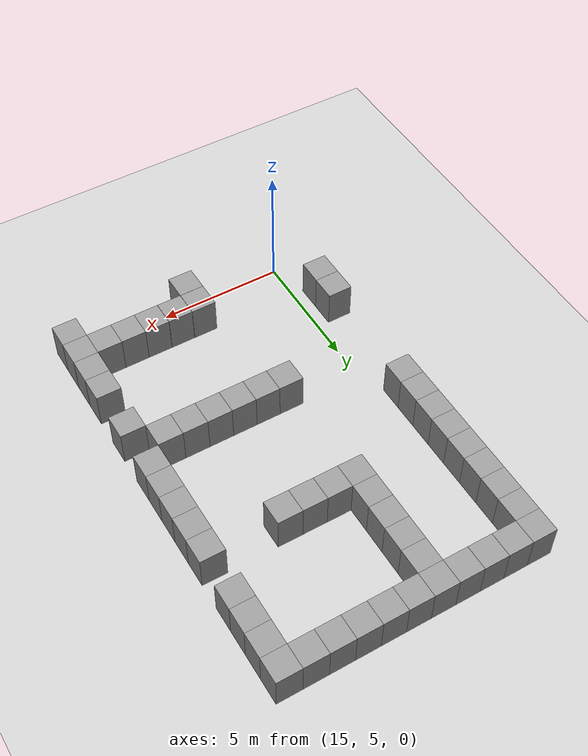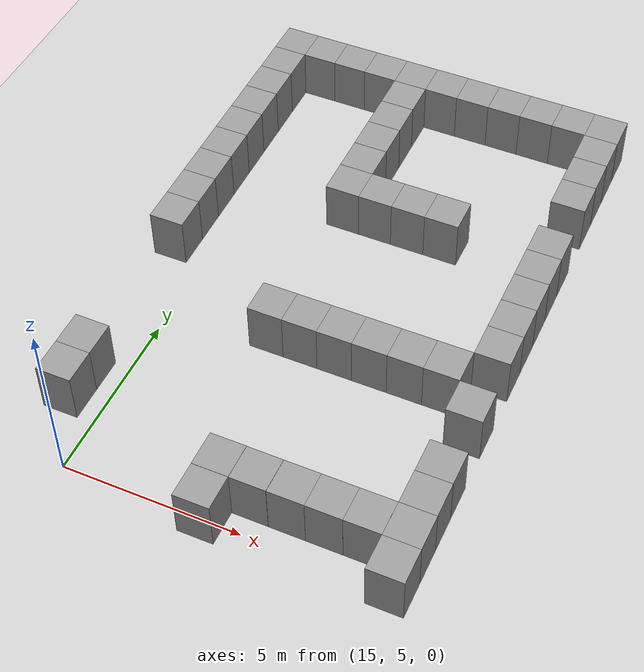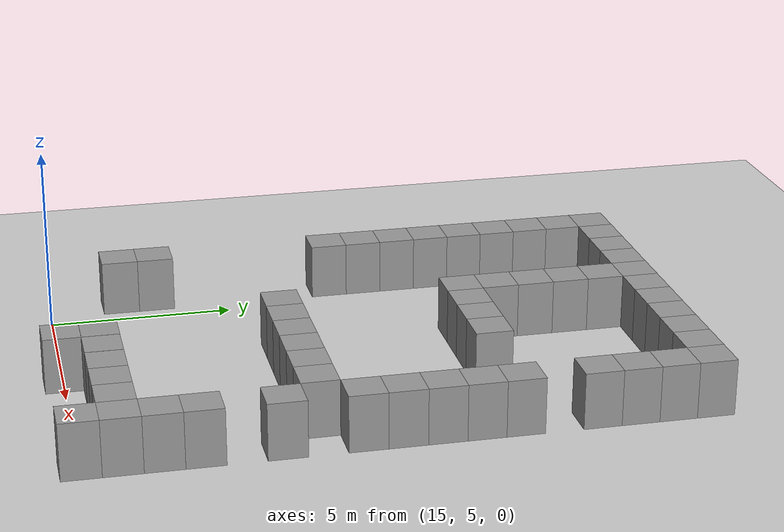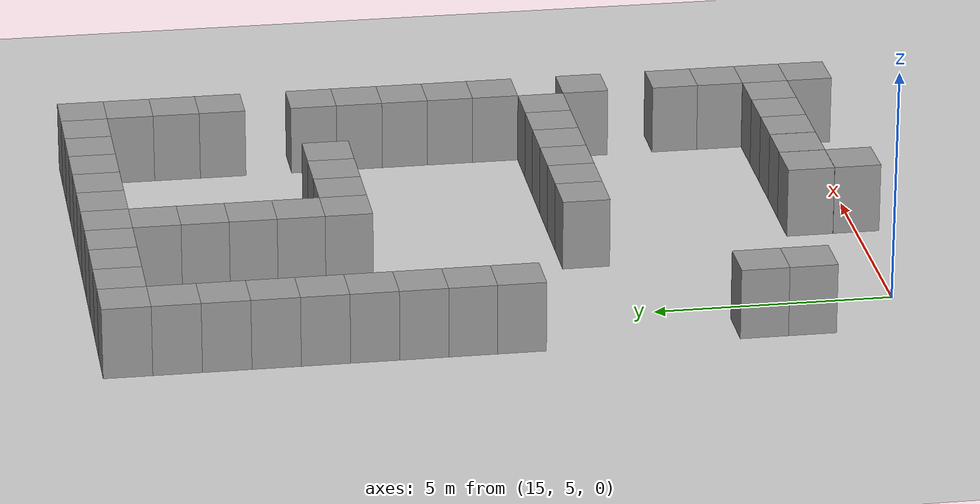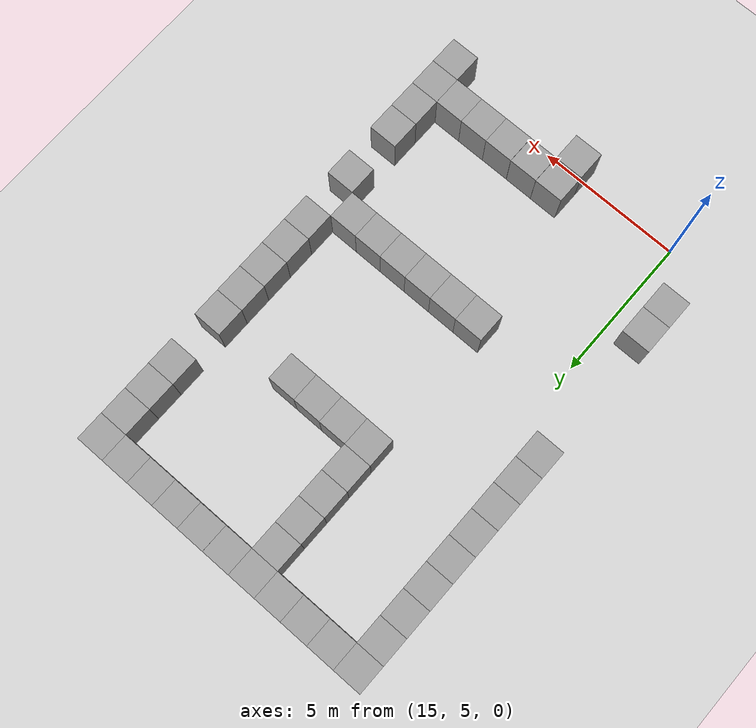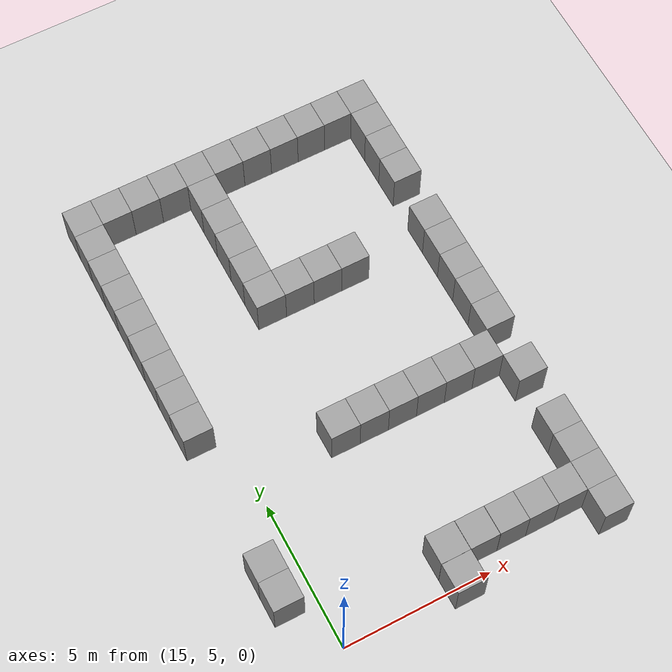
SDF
<sdf version="1.4">
 <world name="default">
  <model name="ground_plane">
   <static>1</static>
   <link name="link">
    <collision name="collision">
     <geometry><plane><normal>0 0 1</normal><size>100 100</size></plane></geometry>
     <surface><friction><ode><mu>100</mu><mu2>50</mu2></ode></friction></surface>
    </collision>
    <visual name="visual">
     <cast_shadows>0</cast_shadows>
     <geometry><plane><normal>0 0 1</normal><size>100 100</size></plane></geometry>
     <material>
      <script><uri>file://media/materials/scripts/gazebo.material</uri><name>Gazebo/Grey</name></script>
     </material>
    </visual>
    <velocity_decay><linear>0</linear><angular>0</angular></velocity_decay>
   </link>
  </model>
  <model name="unit_box_121">
   <pose>14 21 0.5 0 0 -2e-06</pose>
   <static>1</static>
   <link name="link">
    <inertial>
     <mass>1</mass>
     <inertia><ixx>1</ixx><ixy>0</ixy><ixz>0</ixz><iyy>1</iyy><iyz>0</iyz><izz>1</izz></inertia>
    </inertial>
    <collision name="collision"><geometry><box><size>1 1 2</size></box></geometry></collision>
    <visual name="visual">
     <geometry><box><size>1 1 2</size></box></geometry>
     <material>
      <script><uri>file://media/materials/scripts/gazebo.material</uri><name>Gazebo/Grey</name></script>
     </material>
    </visual>
    <velocity_decay><linear>0</linear><angular>0</angular></velocity_decay>
   </link>
   <static>0</static>
  </model>
  <model name="unit_box_122">
   <pose>14 20 0.5 0 0 -4e-06</pose>
   <static>1</static>
   <link name="link">
    <inertial>
     <mass>1</mass>
     <inertia><ixx>1</ixx><ixy>0</ixy><ixz>0</ixz><iyy>1</iyy><iyz>0</iyz><izz>1</izz></inertia>
    </inertial>
    <collision name="collision"><geometry><box><size>1 1 2</size></box></geometry></collision>
    <visual name="visual">
     <geometry><box><size>1 1 2</size></box></geometry>
     <material>
      <script><uri>file://media/materials/scripts/gazebo.material</uri><name>Gazebo/Grey</name></script>
     </material>
    </visual>
    <velocity_decay><linear>0</linear><angular>0</angular></velocity_decay>
   </link>
   <static>0</static>
  </model>
  <model name="unit_box_123">
   <pose>14 19 0.5 0 0 -4e-06</pose>
   <static>1</static>
   <link name="link">
    <inertial>
     <mass>1</mass>
     <inertia><ixx>1</ixx><ixy>0</ixy><ixz>0</ixz><iyy>1</iyy><iyz>0</iyz><izz>1</izz></inertia>
    </inertial>
    <collision name="collision"><geometry><box><size>1 1 2</size></box></geometry></collision>
    <visual name="visual">
     <geometry><box><size>1 1 2</size></box></geometry>
     <material>
      <script><uri>file://media/materials/scripts/gazebo.material</uri><name>Gazebo/Grey</name></script>
     </material>
    </visual>
    <velocity_decay><linear>0</linear><angular>0</angular></velocity_decay>
   </link>
   <static>0</static>
  </model>
  <model name="unit_box_124">
   <pose>14 18 0.5 0 0 -4e-06</pose>
   <static>1</static>
   <link name="link">
    <inertial>
     <mass>1</mass>
     <inertia><ixx>1</ixx><ixy>0</ixy><ixz>0</ixz><iyy>1</iyy><iyz>0</iyz><izz>1</izz></inertia>
    </inertial>
    <collision name="collision"><geometry><box><size>1 1 2</size></box></geometry></collision>
    <visual name="visual">
     <geometry><box><size>1 1 2</size></box></geometry>
     <material>
      <script><uri>file://media/materials/scripts/gazebo.material</uri><name>Gazebo/Grey</name></script>
     </material>
    </visual>
    <velocity_decay><linear>0</linear><angular>0</angular></velocity_decay>
   </link>
   <static>0</static>
  </model>
  <model name="unit_box_125">
   <pose>14 17 0.5 0 -0 1e-06</pose>
   <static>1</static>
   <link name="link">
    <inertial>
     <mass>1</mass>
     <inertia><ixx>1</ixx><ixy>0</ixy><ixz>0</ixz><iyy>1</iyy><iyz>0</iyz><izz>1</izz></inertia>
    </inertial>
    <collision name="collision"><geometry><box><size>1 1 2</size></box></geometry></collision>
    <visual name="visual">
     <geometry><box><size>1 1 2</size></box></geometry>
     <material>
      <script><uri>file://media/materials/scripts/gazebo.material</uri><name>Gazebo/Grey</name></script>
     </material>
    </visual>
    <velocity_decay><linear>0</linear><angular>0</angular></velocity_decay>
   </link>
   <static>0</static>
  </model>
  <model name="unit_box_130">
   <pose>14 16 0.5 0 -0 2e-06</pose>
   <static>1</static>
   <link name="link">
    <inertial>
     <mass>1</mass>
     <inertia><ixx>1</ixx><ixy>0</ixy><ixz>0</ixz><iyy>1</iyy><iyz>0</iyz><izz>1</izz></inertia>
    </inertial>
    <collision name="collision"><geometry><box><size>1 1 2</size></box></geometry></collision>
    <visual name="visual">
     <geometry><box><size>1 1 2</size></box></geometry>
     <material>
      <script><uri>file://media/materials/scripts/gazebo.material</uri><name>Gazebo/Grey</name></script>
     </material>
    </visual>
    <velocity_decay><linear>0</linear><angular>0</angular></velocity_decay>
   </link>
   <static>0</static>
  </model>
  <model name="unit_box_131">
   <pose>14 15 0.5 0 -0 1e-06</pose>
   <static>1</static>
   <link name="link">
    <inertial>
     <mass>1</mass>
     <inertia><ixx>1</ixx><ixy>0</ixy><ixz>0</ixz><iyy>1</iyy><iyz>0</iyz><izz>1</izz></inertia>
    </inertial>
    <collision name="collision"><geometry><box><size>1 1 2</size></box></geometry></collision>
    <visual name="visual">
     <geometry><box><size>1 1 2</size></box></geometry>
     <material>
      <script><uri>file://media/materials/scripts/gazebo.material</uri><name>Gazebo/Grey</name></script>
     </material>
    </visual>
    <velocity_decay><linear>0</linear><angular>0</angular></velocity_decay>
   </link>
   <static>0</static>
  </model>
  <model name="unit_box_132">
   <pose>14 14 0.5 0 -0 1e-06</pose>
   <static>1</static>
   <link name="link">
    <inertial>
     <mass>1</mass>
     <inertia><ixx>1</ixx><ixy>0</ixy><ixz>0</ixz><iyy>1</iyy><iyz>0</iyz><izz>1</izz></inertia>
    </inertial>
    <collision name="collision"><geometry><box><size>1 1 2</size></box></geometry></collision>
    <visual name="visual">
     <geometry><box><size>1 1 2</size></box></geometry>
     <material>
      <script><uri>file://media/materials/scripts/gazebo.material</uri><name>Gazebo/Grey</name></script>
     </material>
    </visual>
    <velocity_decay><linear>0</linear><angular>0</angular></velocity_decay>
   </link>
   <static>0</static>
  </model>
  <model name="unit_box_133">
   <pose>14 13 0.5 0 -0 1e-06</pose>
   <static>1</static>
   <link name="link">
    <inertial>
     <mass>1</mass>
     <inertia><ixx>1</ixx><ixy>0</ixy><ixz>0</ixz><iyy>1</iyy><iyz>0</iyz><izz>1</izz></inertia>
    </inertial>
    <collision name="collision"><geometry><box><size>1 1 2</size></box></geometry></collision>
    <visual name="visual">
     <geometry><box><size>1 1 2</size></box></geometry>
     <material>
      <script><uri>file://media/materials/scripts/gazebo.material</uri><name>Gazebo/Grey</name></script>
     </material>
    </visual>
    <velocity_decay><linear>0</linear><angular>0</angular></velocity_decay>
   </link>
   <static>0</static>
  </model>
  <model name="unit_box_134">
   <pose>15 21 0.5 0 -0 1e-06</pose>
   <static>1</static>
   <link name="link">
    <inertial>
     <mass>1</mass>
     <inertia><ixx>1</ixx><ixy>0</ixy><ixz>0</ixz><iyy>1</iyy><iyz>0</iyz><izz>1</izz></inertia>
    </inertial>
    <collision name="collision"><geometry><box><size>1 1 2</size></box></geometry></collision>
    <visual name="visual">
     <geometry><box><size>1 1 2</size></box></geometry>
     <material>
      <script><uri>file://media/materials/scripts/gazebo.material</uri><name>Gazebo/Grey</name></script>
     </material>
    </visual>
    <velocity_decay><linear>0</linear><angular>0</angular></velocity_decay>
   </link>
   <static>0</static>
  </model>
  <model name="unit_box_135">
   <pose>16 21 0.5 0 -0 1e-06</pose>
   <static>1</static>
   <link name="link">
    <inertial>
     <mass>1</mass>
     <inertia><ixx>1</ixx><ixy>0</ixy><ixz>0</ixz><iyy>1</iyy><iyz>0</iyz><izz>1</izz></inertia>
    </inertial>
    <collision name="collision"><geometry><box><size>1 1 2</size></box></geometry></collision>
    <visual name="visual">
     <geometry><box><size>1 1 2</size></box></geometry>
     <material>
      <script><uri>file://media/materials/scripts/gazebo.material</uri><name>Gazebo/Grey</name></script>
     </material>
    </visual>
    <velocity_decay><linear>0</linear><angular>0</angular></velocity_decay>
   </link>
   <static>0</static>
  </model>
  <model name="unit_box_136">
   <pose>17 21 0.5 0 -0 3e-06</pose>
   <static>1</static>
   <link name="link">
    <inertial>
     <mass>1</mass>
     <inertia><ixx>1</ixx><ixy>0</ixy><ixz>0</ixz><iyy>1</iyy><iyz>0</iyz><izz>1</izz></inertia>
    </inertial>
    <collision name="collision"><geometry><box><size>1 1 2</size></box></geometry></collision>
    <visual name="visual">
     <geometry><box><size>1 1 2</size></box></geometry>
     <material>
      <script><uri>file://media/materials/scripts/gazebo.material</uri><name>Gazebo/Grey</name></script>
     </material>
    </visual>
    <velocity_decay><linear>0</linear><angular>0</angular></velocity_decay>
   </link>
   <static>0</static>
  </model>
  <model name="unit_box_137">
   <pose>18 21 0.5 0 -0 3e-06</pose>
   <static>1</static>
   <link name="link">
    <inertial>
     <mass>1</mass>
     <inertia><ixx>1</ixx><ixy>0</ixy><ixz>0</ixz><iyy>1</iyy><iyz>0</iyz><izz>1</izz></inertia>
    </inertial>
    <collision name="collision"><geometry><box><size>1 1 2</size></box></geometry></collision>
    <visual name="visual">
     <geometry><box><size>1 1 2</size></box></geometry>
     <material>
      <script><uri>file://media/materials/scripts/gazebo.material</uri><name>Gazebo/Grey</name></script>
     </material>
    </visual>
    <velocity_decay><linear>0</linear><angular>0</angular></velocity_decay>
   </link>
   <static>0</static>
  </model>
  <model name="unit_box_138">
   <pose>18 20 0.5 0 -0 5e-06</pose>
   <static>1</static>
   <link name="link">
    <inertial>
     <mass>1</mass>
     <inertia><ixx>1</ixx><ixy>0</ixy><ixz>0</ixz><iyy>1</iyy><iyz>0</iyz><izz>1</izz></inertia>
    </inertial>
    <collision name="collision"><geometry><box><size>1 1 2</size></box></geometry></collision>
    <visual name="visual">
     <geometry><box><size>1 1 2</size></box></geometry>
     <material>
      <script><uri>file://media/materials/scripts/gazebo.material</uri><name>Gazebo/Grey</name></script>
     </material>
    </visual>
    <velocity_decay><linear>0</linear><angular>0</angular></velocity_decay>
   </link>
   <static>0</static>
  </model>
  <model name="unit_box_139">
   <pose>18 19 0.5 0 -0 3e-06</pose>
   <static>1</static>
   <link name="link">
    <inertial>
     <mass>1</mass>
     <inertia><ixx>1</ixx><ixy>0</ixy><ixz>0</ixz><iyy>1</iyy><iyz>0</iyz><izz>1</izz></inertia>
    </inertial>
    <collision name="collision"><geometry><box><size>1 1 2</size></box></geometry></collision>
    <visual name="visual">
     <geometry><box><size>1 1 2</size></box></geometry>
     <material>
      <script><uri>file://media/materials/scripts/gazebo.material</uri><name>Gazebo/Grey</name></script>
     </material>
    </visual>
    <velocity_decay><linear>0</linear><angular>0</angular></velocity_decay>
   </link>
   <static>0</static>
  </model>
  <model name="unit_box_140">
   <pose>18 18 0.5 0 -0 2e-06</pose>
   <static>1</static>
   <link name="link">
    <inertial>
     <mass>1</mass>
     <inertia><ixx>1</ixx><ixy>0</ixy><ixz>0</ixz><iyy>1</iyy><iyz>0</iyz><izz>1</izz></inertia>
    </inertial>
    <collision name="collision"><geometry><box><size>1 1 2</size></box></geometry></collision>
    <visual name="visual">
     <geometry><box><size>1 1 2</size></box></geometry>
     <material>
      <script><uri>file://media/materials/scripts/gazebo.material</uri><name>Gazebo/Grey</name></script>
     </material>
    </visual>
    <velocity_decay><linear>0</linear><angular>0</angular></velocity_decay>
   </link>
   <static>0</static>
  </model>
  <model name="unit_box_141">
   <pose>18 17 0.5 0 -0 1e-06</pose>
   <static>1</static>
   <link name="link">
    <inertial>
     <mass>1</mass>
     <inertia><ixx>1</ixx><ixy>0</ixy><ixz>0</ixz><iyy>1</iyy><iyz>0</iyz><izz>1</izz></inertia>
    </inertial>
    <collision name="collision"><geometry><box><size>1 1 2</size></box></geometry></collision>
    <visual name="visual">
     <geometry><box><size>1 1 2</size></box></geometry>
     <material>
      <script><uri>file://media/materials/scripts/gazebo.material</uri><name>Gazebo/Grey</name></script>
     </material>
    </visual>
    <velocity_decay><linear>0</linear><angular>0</angular></velocity_decay>
   </link>
   <static>0</static>
  </model>
  <model name="unit_box_142">
   <pose>18 16 0.5 0 -0 1e-06</pose>
   <static>1</static>
   <link name="link">
    <inertial>
     <mass>1</mass>
     <inertia><ixx>1</ixx><ixy>0</ixy><ixz>0</ixz><iyy>1</iyy><iyz>0</iyz><izz>1</izz></inertia>
    </inertial>
    <collision name="collision"><geometry><box><size>1 1 2</size></box></geometry></collision>
    <visual name="visual">
     <geometry><box><size>1 1 2</size></box></geometry>
     <material>
      <script><uri>file://media/materials/scripts/gazebo.material</uri><name>Gazebo/Grey</name></script>
     </material>
    </visual>
    <velocity_decay><linear>0</linear><angular>0</angular></velocity_decay>
   </link>
   <static>0</static>
  </model>
  <model name="unit_box_143">
   <pose>19 16 0.5 0 -0 1e-06</pose>
   <static>1</static>
   <link name="link">
    <inertial>
     <mass>1</mass>
     <inertia><ixx>1</ixx><ixy>0</ixy><ixz>0</ixz><iyy>1</iyy><iyz>0</iyz><izz>1</izz></inertia>
    </inertial>
    <collision name="collision"><geometry><box><size>1 1 2</size></box></geometry></collision>
    <visual name="visual">
     <geometry><box><size>1 1 2</size></box></geometry>
     <material>
      <script><uri>file://media/materials/scripts/gazebo.material</uri><name>Gazebo/Grey</name></script>
     </material>
    </visual>
    <velocity_decay><linear>0</linear><angular>0</angular></velocity_decay>
   </link>
   <static>0</static>
  </model>
  <model name="unit_box_144">
   <pose>20 16 0.5 0 0 -1e-06</pose>
   <static>1</static>
   <link name="link">
    <inertial>
     <mass>1</mass>
     <inertia><ixx>1</ixx><ixy>0</ixy><ixz>0</ixz><iyy>1</iyy><iyz>0</iyz><izz>1</izz></inertia>
    </inertial>
    <collision name="collision"><geometry><box><size>1 1 2</size></box></geometry></collision>
    <visual name="visual">
     <geometry><box><size>1 1 2</size></box></geometry>
     <material>
      <script><uri>file://media/materials/scripts/gazebo.material</uri><name>Gazebo/Grey</name></script>
     </material>
    </visual>
    <velocity_decay><linear>0</linear><angular>0</angular></velocity_decay>
   </link>
   <static>0</static>
  </model>
  <model name="unit_box_145">
   <pose>21 16 0.5 0 0 -1e-06</pose>
   <static>1</static>
   <link name="link">
    <inertial>
     <mass>1</mass>
     <inertia><ixx>1</ixx><ixy>0</ixy><ixz>0</ixz><iyy>1</iyy><iyz>0</iyz><izz>1</izz></inertia>
    </inertial>
    <collision name="collision"><geometry><box><size>1 1 2</size></box></geometry></collision>
    <visual name="visual">
     <geometry><box><size>1 1 2</size></box></geometry>
     <material>
      <script><uri>file://media/materials/scripts/gazebo.material</uri><name>Gazebo/Grey</name></script>
     </material>
    </visual>
    <velocity_decay><linear>0</linear><angular>0</angular></velocity_decay>
   </link>
   <static>0</static>
  </model>
  <model name="unit_box_146">
   <pose>19 21 0.5 0 -0 3e-06</pose>
   <static>1</static>
   <link name="link">
    <inertial>
     <mass>1</mass>
     <inertia><ixx>1</ixx><ixy>0</ixy><ixz>0</ixz><iyy>1</iyy><iyz>0</iyz><izz>1</izz></inertia>
    </inertial>
    <collision name="collision"><geometry><box><size>1 1 2</size></box></geometry></collision>
    <visual name="visual">
     <geometry><box><size>1 1 2</size></box></geometry>
     <material>
      <script><uri>file://media/materials/scripts/gazebo.material</uri><name>Gazebo/Grey</name></script>
     </material>
    </visual>
    <velocity_decay><linear>0</linear><angular>0</angular></velocity_decay>
   </link>
   <static>0</static>
  </model>
  <model name="unit_box_147">
   <pose>20.0003 21 0.5 0 -0 1.4e-05</pose>
   <static>1</static>
   <link name="link">
    <inertial>
     <mass>1</mass>
     <inertia><ixx>1</ixx><ixy>0</ixy><ixz>0</ixz><iyy>1</iyy><iyz>0</iyz><izz>1</izz></inertia>
    </inertial>
    <collision name="collision"><geometry><box><size>1 1 2</size></box></geometry></collision>
    <visual name="visual">
     <geometry><box><size>1 1 2</size></box></geometry>
     <material>
      <script><uri>file://media/materials/scripts/gazebo.material</uri><name>Gazebo/Grey</name></script>
     </material>
    </visual>
    <velocity_decay><linear>0</linear><angular>0</angular></velocity_decay>
   </link>
   <static>0</static>
  </model>
  <model name="unit_box_148">
   <pose>21.0003 21 0.5 0 -0 3.3e-05</pose>
   <static>1</static>
   <link name="link">
    <inertial>
     <mass>1</mass>
     <inertia><ixx>1</ixx><ixy>0</ixy><ixz>0</ixz><iyy>1</iyy><iyz>0</iyz><izz>1</izz></inertia>
    </inertial>
    <collision name="collision"><geometry><box><size>1 1 2</size></box></geometry></collision>
    <visual name="visual">
     <geometry><box><size>1 1 2</size></box></geometry>
     <material>
      <script><uri>file://media/materials/scripts/gazebo.material</uri><name>Gazebo/Grey</name></script>
     </material>
    </visual>
    <velocity_decay><linear>0</linear><angular>0</angular></velocity_decay>
   </link>
   <static>0</static>
  </model>
  <model name="unit_box_150">
   <pose>22.0003 21.0001 0.5 0 -0 7.3e-05</pose>
   <static>1</static>
   <link name="link">
    <inertial>
     <mass>1</mass>
     <inertia><ixx>1</ixx><ixy>0</ixy><ixz>0</ixz><iyy>1</iyy><iyz>0</iyz><izz>1</izz></inertia>
    </inertial>
    <collision name="collision"><geometry><box><size>1 1 2</size></box></geometry></collision>
    <visual name="visual">
     <geometry><box><size>1 1 2</size></box></geometry>
     <material>
      <script><uri>file://media/materials/scripts/gazebo.material</uri><name>Gazebo/Grey</name></script>
     </material>
    </visual>
    <velocity_decay><linear>0</linear><angular>0</angular></velocity_decay>
   </link>
   <static>0</static>
  </model>
  <model name="unit_box_151">
   <pose>23.0004 21.0004 0.5 0 -0 0.000111</pose>
   <static>1</static>
   <link name="link">
    <inertial>
     <mass>1</mass>
     <inertia><ixx>1</ixx><ixy>0</ixy><ixz>0</ixz><iyy>1</iyy><iyz>0</iyz><izz>1</izz></inertia>
    </inertial>
    <collision name="collision"><geometry><box><size>1 1 2</size></box></geometry></collision>
    <visual name="visual">
     <geometry><box><size>1 1 2</size></box></geometry>
     <material>
      <script><uri>file://media/materials/scripts/gazebo.material</uri><name>Gazebo/Grey</name></script>
     </material>
    </visual>
    <velocity_decay><linear>0</linear><angular>0</angular></velocity_decay>
   </link>
   <static>0</static>
  </model>
  <model name="unit_box_152">
   <pose>24.0004 21.0005 0.5 0 -0 4.7e-05</pose>
   <static>1</static>
   <link name="link">
    <inertial>
     <mass>1</mass>
     <inertia><ixx>1</ixx><ixy>0</ixy><ixz>0</ixz><iyy>1</iyy><iyz>0</iyz><izz>1</izz></inertia>
    </inertial>
    <collision name="collision"><geometry><box><size>1 1 2</size></box></geometry></collision>
    <visual name="visual">
     <geometry><box><size>1 1 2</size></box></geometry>
     <material>
      <script><uri>file://media/materials/scripts/gazebo.material</uri><name>Gazebo/Grey</name></script>
     </material>
    </visual>
    <velocity_decay><linear>0</linear><angular>0</angular></velocity_decay>
   </link>
   <static>0</static>
  </model>
  <model name="unit_box_153">
   <pose>24.0001 20.0005 0.5 0 -0 2.5e-05</pose>
   <static>1</static>
   <link name="link">
    <inertial>
     <mass>1</mass>
     <inertia><ixx>1</ixx><ixy>0</ixy><ixz>0</ixz><iyy>1</iyy><iyz>0</iyz><izz>1</izz></inertia>
    </inertial>
    <collision name="collision"><geometry><box><size>1 1 2</size></box></geometry></collision>
    <visual name="visual">
     <geometry><box><size>1 1 2</size></box></geometry>
     <material>
      <script><uri>file://media/materials/scripts/gazebo.material</uri><name>Gazebo/Grey</name></script>
     </material>
    </visual>
    <velocity_decay><linear>0</linear><angular>0</angular></velocity_decay>
   </link>
   <static>0</static>
  </model>
  <model name="unit_box_154">
   <pose>24.0001 19.0005 0.5 0 -0 1.7e-05</pose>
   <static>1</static>
   <link name="link">
    <inertial>
     <mass>1</mass>
     <inertia><ixx>1</ixx><ixy>0</ixy><ixz>0</ixz><iyy>1</iyy><iyz>0</iyz><izz>1</izz></inertia>
    </inertial>
    <collision name="collision"><geometry><box><size>1 1 2</size></box></geometry></collision>
    <visual name="visual">
     <geometry><box><size>1 1 2</size></box></geometry>
     <material>
      <script><uri>file://media/materials/scripts/gazebo.material</uri><name>Gazebo/Grey</name></script>
     </material>
    </visual>
    <velocity_decay><linear>0</linear><angular>0</angular></velocity_decay>
   </link>
   <static>0</static>
  </model>
  <model name="unit_box_155">
   <pose>24.0001 18.0005 0.5 0 -0 1.3e-05</pose>
   <static>1</static>
   <link name="link">
    <inertial>
     <mass>1</mass>
     <inertia><ixx>1</ixx><ixy>0</ixy><ixz>0</ixz><iyy>1</iyy><iyz>0</iyz><izz>1</izz></inertia>
    </inertial>
    <collision name="collision"><geometry><box><size>1 1 2</size></box></geometry></collision>
    <visual name="visual">
     <geometry><box><size>1 1 2</size></box></geometry>
     <material>
      <script><uri>file://media/materials/scripts/gazebo.material</uri><name>Gazebo/Grey</name></script>
     </material>
    </visual>
    <velocity_decay><linear>0</linear><angular>0</angular></velocity_decay>
   </link>
   <static>0</static>
  </model>
  <model name="unit_box_157">
   <pose>24.0002 16.0005 0.5 0 -0 1.5e-05</pose>
   <static>1</static>
   <link name="link">
    <inertial>
     <mass>1</mass>
     <inertia><ixx>1</ixx><ixy>0</ixy><ixz>0</ixz><iyy>1</iyy><iyz>0</iyz><izz>1</izz></inertia>
    </inertial>
    <collision name="collision"><geometry><box><size>1 1 2</size></box></geometry></collision>
    <visual name="visual">
     <geometry><box><size>1 1 2</size></box></geometry>
     <material>
      <script><uri>file://media/materials/scripts/gazebo.material</uri><name>Gazebo/Grey</name></script>
     </material>
    </visual>
    <velocity_decay><linear>0</linear><angular>0</angular></velocity_decay>
   </link>
   <static>0</static>
  </model>
  <model name="unit_box_158">
   <pose>24.0001 15.0005 0.5 0 -0 1.7e-05</pose>
   <static>1</static>
   <link name="link">
    <inertial>
     <mass>1</mass>
     <inertia><ixx>1</ixx><ixy>0</ixy><ixz>0</ixz><iyy>1</iyy><iyz>0</iyz><izz>1</izz></inertia>
    </inertial>
    <collision name="collision"><geometry><box><size>1 1 2</size></box></geometry></collision>
    <visual name="visual">
     <geometry><box><size>1 1 2</size></box></geometry>
     <material>
      <script><uri>file://media/materials/scripts/gazebo.material</uri><name>Gazebo/Grey</name></script>
     </material>
    </visual>
    <velocity_decay><linear>0</linear><angular>0</angular></velocity_decay>
   </link>
   <static>0</static>
  </model>
  <model name="unit_box_159">
   <pose>24 14.0005 0.5 0 -0 2e-05</pose>
   <static>1</static>
   <link name="link">
    <inertial>
     <mass>1</mass>
     <inertia><ixx>1</ixx><ixy>0</ixy><ixz>0</ixz><iyy>1</iyy><iyz>0</iyz><izz>1</izz></inertia>
    </inertial>
    <collision name="collision"><geometry><box><size>1 1 2</size></box></geometry></collision>
    <visual name="visual">
     <geometry><box><size>1 1 2</size></box></geometry>
     <material>
      <script><uri>file://media/materials/scripts/gazebo.material</uri><name>Gazebo/Grey</name></script>
     </material>
    </visual>
    <velocity_decay><linear>0</linear><angular>0</angular></velocity_decay>
   </link>
   <static>0</static>
  </model>
  <model name="unit_box_160">
   <pose>24 13.0005 0.5 0 -0 2.1e-05</pose>
   <static>1</static>
   <link name="link">
    <inertial>
     <mass>1</mass>
     <inertia><ixx>1</ixx><ixy>0</ixy><ixz>0</ixz><iyy>1</iyy><iyz>0</iyz><izz>1</izz></inertia>
    </inertial>
    <collision name="collision"><geometry><box><size>1 1 2</size></box></geometry></collision>
    <visual name="visual">
     <geometry><box><size>1 1 2</size></box></geometry>
     <material>
      <script><uri>file://media/materials/scripts/gazebo.material</uri><name>Gazebo/Grey</name></script>
     </material>
    </visual>
    <velocity_decay><linear>0</linear><angular>0</angular></velocity_decay>
   </link>
   <static>0</static>
  </model>
  <model name="unit_box_161">
   <pose>24.0001 12.0005 0.5 0 -0 2.2e-05</pose>
   <static>1</static>
   <link name="link">
    <inertial>
     <mass>1</mass>
     <inertia><ixx>1</ixx><ixy>0</ixy><ixz>0</ixz><iyy>1</iyy><iyz>0</iyz><izz>1</izz></inertia>
    </inertial>
    <collision name="collision"><geometry><box><size>1 1 2</size></box></geometry></collision>
    <visual name="visual">
     <geometry><box><size>1 1 2</size></box></geometry>
     <material>
      <script><uri>file://media/materials/scripts/gazebo.material</uri><name>Gazebo/Grey</name></script>
     </material>
    </visual>
    <velocity_decay><linear>0</linear><angular>0</angular></velocity_decay>
   </link>
   <static>0</static>
  </model>
  <model name="unit_box_163">
   <pose>23 11 0.5 0 -0 9e-06</pose>
   <static>1</static>
   <link name="link">
    <inertial>
     <mass>1</mass>
     <inertia><ixx>1</ixx><ixy>0</ixy><ixz>0</ixz><iyy>1</iyy><iyz>0</iyz><izz>1</izz></inertia>
    </inertial>
    <collision name="collision"><geometry><box><size>1 1 2</size></box></geometry></collision>
    <visual name="visual">
     <geometry><box><size>1 1 2</size></box></geometry>
     <material>
      <script><uri>file://media/materials/scripts/gazebo.material</uri><name>Gazebo/Grey</name></script>
     </material>
    </visual>
    <velocity_decay><linear>0</linear><angular>0</angular></velocity_decay>
   </link>
   <static>0</static>
  </model>
  <model name="unit_box_164">
   <pose>22 11 0.5 0 -0 1.6e-05</pose>
   <static>1</static>
   <link name="link">
    <inertial>
     <mass>1</mass>
     <inertia><ixx>1</ixx><ixy>0</ixy><ixz>0</ixz><iyy>1</iyy><iyz>0</iyz><izz>1</izz></inertia>
    </inertial>
    <collision name="collision"><geometry><box><size>1 1 2</size></box></geometry></collision>
    <visual name="visual">
     <geometry><box><size>1 1 2</size></box></geometry>
     <material>
      <script><uri>file://media/materials/scripts/gazebo.material</uri><name>Gazebo/Grey</name></script>
     </material>
    </visual>
    <velocity_decay><linear>0</linear><angular>0</angular></velocity_decay>
   </link>
   <static>0</static>
  </model>
  <model name="unit_box_165">
   <pose>21 11 0.5 0 -0 1.6e-05</pose>
   <static>1</static>
   <link name="link">
    <inertial>
     <mass>1</mass>
     <inertia><ixx>1</ixx><ixy>0</ixy><ixz>0</ixz><iyy>1</iyy><iyz>0</iyz><izz>1</izz></inertia>
    </inertial>
    <collision name="collision"><geometry><box><size>1 1 2</size></box></geometry></collision>
    <visual name="visual">
     <geometry><box><size>1 1 2</size></box></geometry>
     <material>
      <script><uri>file://media/materials/scripts/gazebo.material</uri><name>Gazebo/Grey</name></script>
     </material>
    </visual>
    <velocity_decay><linear>0</linear><angular>0</angular></velocity_decay>
   </link>
   <static>0</static>
  </model>
  <model name="unit_box_166">
   <pose>20 11 0.5 0 -0 5e-06</pose>
   <static>1</static>
   <link name="link">
    <inertial>
     <mass>1</mass>
     <inertia><ixx>1</ixx><ixy>0</ixy><ixz>0</ixz><iyy>1</iyy><iyz>0</iyz><izz>1</izz></inertia>
    </inertial>
    <collision name="collision"><geometry><box><size>1 1 2</size></box></geometry></collision>
    <visual name="visual">
     <geometry><box><size>1 1 2</size></box></geometry>
     <material>
      <script><uri>file://media/materials/scripts/gazebo.material</uri><name>Gazebo/Grey</name></script>
     </material>
    </visual>
    <velocity_decay><linear>0</linear><angular>0</angular></velocity_decay>
   </link>
   <static>0</static>
  </model>
  <model name="unit_box_167">
   <pose>19 11 0.5 0 -0 4e-06</pose>
   <static>1</static>
   <link name="link">
    <inertial>
     <mass>1</mass>
     <inertia><ixx>1</ixx><ixy>0</ixy><ixz>0</ixz><iyy>1</iyy><iyz>0</iyz><izz>1</izz></inertia>
    </inertial>
    <collision name="collision"><geometry><box><size>1 1 2</size></box></geometry></collision>
    <visual name="visual">
     <geometry><box><size>1 1 2</size></box></geometry>
     <material>
      <script><uri>file://media/materials/scripts/gazebo.material</uri><name>Gazebo/Grey</name></script>
     </material>
    </visual>
    <velocity_decay><linear>0</linear><angular>0</angular></velocity_decay>
   </link>
   <static>0</static>
  </model>
  <model name="unit_box_168">
   <pose>18 11 0.5 0 -0 3e-06</pose>
   <static>1</static>
   <link name="link">
    <inertial>
     <mass>1</mass>
     <inertia><ixx>1</ixx><ixy>0</ixy><ixz>0</ixz><iyy>1</iyy><iyz>0</iyz><izz>1</izz></inertia>
    </inertial>
    <collision name="collision"><geometry><box><size>1 1 2</size></box></geometry></collision>
    <visual name="visual">
     <geometry><box><size>1 1 2</size></box></geometry>
     <material>
      <script><uri>file://media/materials/scripts/gazebo.material</uri><name>Gazebo/Grey</name></script>
     </material>
    </visual>
    <velocity_decay><linear>0</linear><angular>0</angular></velocity_decay>
   </link>
   <static>0</static>
  </model>
  <model name="unit_box_169">
   <pose>14 8.00027 0.5 0 0 -7.2e-05</pose>
   <static>1</static>
   <link name="link">
    <inertial>
     <mass>1</mass>
     <inertia><ixx>1</ixx><ixy>0</ixy><ixz>0</ixz><iyy>1</iyy><iyz>0</iyz><izz>1</izz></inertia>
    </inertial>
    <collision name="collision"><geometry><box><size>1 1 2</size></box></geometry></collision>
    <visual name="visual">
     <geometry><box><size>1 1 2</size></box></geometry>
     <material>
      <script><uri>file://media/materials/scripts/gazebo.material</uri><name>Gazebo/Grey</name></script>
     </material>
    </visual>
    <velocity_decay><linear>0</linear><angular>0</angular></velocity_decay>
   </link>
   <static>0</static>
  </model>
  <model name="unit_box_170">
   <pose>14 7.00026 0.5 0 0 -7.2e-05</pose>
   <static>1</static>
   <link name="link">
    <inertial>
     <mass>1</mass>
     <inertia><ixx>1</ixx><ixy>0</ixy><ixz>0</ixz><iyy>1</iyy><iyz>0</iyz><izz>1</izz></inertia>
    </inertial>
    <collision name="collision"><geometry><box><size>1 1 2</size></box></geometry></collision>
    <visual name="visual">
     <geometry><box><size>1 1 2</size></box></geometry>
     <material>
      <script><uri>file://media/materials/scripts/gazebo.material</uri><name>Gazebo/Grey</name></script>
     </material>
    </visual>
    <velocity_decay><linear>0</linear><angular>0</angular></velocity_decay>
   </link>
   <static>0</static>
  </model>
  <model name="unit_box_183">
   <pose>18.996 5.00065 0.5 0 -0 0.002125</pose>
   <static>1</static>
   <link name="link">
    <inertial>
     <mass>1</mass>
     <inertia><ixx>1</ixx><ixy>0</ixy><ixz>0</ixz><iyy>1</iyy><iyz>0</iyz><izz>1</izz></inertia>
    </inertial>
    <collision name="collision"><geometry><box><size>1 1 2</size></box></geometry></collision>
    <visual name="visual">
     <geometry><box><size>1 1 2</size></box></geometry>
     <material>
      <script><uri>file://media/materials/scripts/gazebo.material</uri><name>Gazebo/Grey</name></script>
     </material>
    </visual>
    <velocity_decay><linear>0</linear><angular>0</angular></velocity_decay>
   </link>
   <static>0</static>
  </model>
  <model name="unit_box_184">
   <pose>18.9921 6.00258 0.5 0 -0 0.000734</pose>
   <static>1</static>
   <link name="link">
    <inertial>
     <mass>1</mass>
     <inertia><ixx>1</ixx><ixy>0</ixy><ixz>0</ixz><iyy>1</iyy><iyz>0</iyz><izz>1</izz></inertia>
    </inertial>
    <collision name="collision"><geometry><box><size>1 1 2</size></box></geometry></collision>
    <visual name="visual">
     <geometry><box><size>1 1 2</size></box></geometry>
     <material>
      <script><uri>file://media/materials/scripts/gazebo.material</uri><name>Gazebo/Grey</name></script>
     </material>
    </visual>
    <velocity_decay><linear>0</linear><angular>0</angular></velocity_decay>
   </link>
   <static>0</static>
  </model>
  <model name="unit_box_185">
   <pose>21.0007 5.99621 0.5 0 -0 0.00019</pose>
   <static>1</static>
   <link name="link">
    <inertial>
     <mass>1</mass>
     <inertia><ixx>1</ixx><ixy>0</ixy><ixz>0</ixz><iyy>1</iyy><iyz>0</iyz><izz>1</izz></inertia>
    </inertial>
    <collision name="collision"><geometry><box><size>1 1 2</size></box></geometry></collision>
    <visual name="visual">
     <geometry><box><size>1 1 2</size></box></geometry>
     <material>
      <script><uri>file://media/materials/scripts/gazebo.material</uri><name>Gazebo/Grey</name></script>
     </material>
    </visual>
    <velocity_decay><linear>0</linear><angular>0</angular></velocity_decay>
   </link>
   <static>0</static>
  </model>
  <model name="unit_box_186">
   <pose>22.0007 5.99697 0.5 0 -0 0.000178</pose>
   <static>1</static>
   <link name="link">
    <inertial>
     <mass>1</mass>
     <inertia><ixx>1</ixx><ixy>0</ixy><ixz>0</ixz><iyy>1</iyy><iyz>0</iyz><izz>1</izz></inertia>
    </inertial>
    <collision name="collision"><geometry><box><size>1 1 2</size></box></geometry></collision>
    <visual name="visual">
     <geometry><box><size>1 1 2</size></box></geometry>
     <material>
      <script><uri>file://media/materials/scripts/gazebo.material</uri><name>Gazebo/Grey</name></script>
     </material>
    </visual>
    <velocity_decay><linear>0</linear><angular>0</angular></velocity_decay>
   </link>
   <static>0</static>
  </model>
  <model name="unit_box_187">
   <pose>23.0007 5.99842 0.5 0 -0 0.000172</pose>
   <static>1</static>
   <link name="link">
    <inertial>
     <mass>1</mass>
     <inertia><ixx>1</ixx><ixy>0</ixy><ixz>0</ixz><iyy>1</iyy><iyz>0</iyz><izz>1</izz></inertia>
    </inertial>
    <collision name="collision"><geometry><box><size>1 1 2</size></box></geometry></collision>
    <visual name="visual">
     <geometry><box><size>1 1 2</size></box></geometry>
     <material>
      <script><uri>file://media/materials/scripts/gazebo.material</uri><name>Gazebo/Grey</name></script>
     </material>
    </visual>
    <velocity_decay><linear>0</linear><angular>0</angular></velocity_decay>
   </link>
   <static>0</static>
  </model>
  <model name="unit_box_188">
   <pose>24.0001 10.0004 0.5 0 -0 3.9e-05</pose>
   <static>1</static>
   <link name="link">
    <inertial>
     <mass>1</mass>
     <inertia><ixx>1</ixx><ixy>0</ixy><ixz>0</ixz><iyy>1</iyy><iyz>0</iyz><izz>1</izz></inertia>
    </inertial>
    <collision name="collision"><geometry><box><size>1 1 2</size></box></geometry></collision>
    <visual name="visual">
     <geometry><box><size>1 1 2</size></box></geometry>
     <material>
      <script><uri>file://media/materials/scripts/gazebo.material</uri><name>Gazebo/Grey</name></script>
     </material>
    </visual>
    <velocity_decay><linear>0</linear><angular>0</angular></velocity_decay>
   </link>
   <static>0</static>
  </model>
  <model name="unit_box_190">
   <pose>24.0001 8.00042 0.5 0 -0 3.9e-05</pose>
   <static>1</static>
   <link name="link">
    <inertial>
     <mass>1</mass>
     <inertia><ixx>1</ixx><ixy>0</ixy><ixz>0</ixz><iyy>1</iyy><iyz>0</iyz><izz>1</izz></inertia>
    </inertial>
    <collision name="collision"><geometry><box><size>1 1 2</size></box></geometry></collision>
    <visual name="visual">
     <geometry><box><size>1 1 2</size></box></geometry>
     <material>
      <script><uri>file://media/materials/scripts/gazebo.material</uri><name>Gazebo/Grey</name></script>
     </material>
    </visual>
    <velocity_decay><linear>0</linear><angular>0</angular></velocity_decay>
   </link>
   <static>0</static>
  </model>
  <model name="unit_box_191">
   <pose>24.0002 7.00042 0.5 0 -0 3.8e-05</pose>
   <static>1</static>
   <link name="link">
    <inertial>
     <mass>1</mass>
     <inertia><ixx>1</ixx><ixy>0</ixy><ixz>0</ixz><iyy>1</iyy><iyz>0</iyz><izz>1</izz></inertia>
    </inertial>
    <collision name="collision"><geometry><box><size>1 1 2</size></box></geometry></collision>
    <visual name="visual">
     <geometry><box><size>1 1 2</size></box></geometry>
     <material>
      <script><uri>file://media/materials/scripts/gazebo.material</uri><name>Gazebo/Grey</name></script>
     </material>
    </visual>
    <velocity_decay><linear>0</linear><angular>0</angular></velocity_decay>
   </link>
   <static>0</static>
  </model>
  <model name="unit_box_192">
   <pose>24.0014 6.00042 0.5 0 -0 3.8e-05</pose>
   <static>1</static>
   <link name="link">
    <inertial>
     <mass>1</mass>
     <inertia><ixx>1</ixx><ixy>0</ixy><ixz>0</ixz><iyy>1</iyy><iyz>0</iyz><izz>1</izz></inertia>
    </inertial>
    <collision name="collision"><geometry><box><size>1 1 2</size></box></geometry></collision>
    <visual name="visual">
     <geometry><box><size>1 1 2</size></box></geometry>
     <material>
      <script><uri>file://media/materials/scripts/gazebo.material</uri><name>Gazebo/Grey</name></script>
     </material>
    </visual>
    <velocity_decay><linear>0</linear><angular>0</angular></velocity_decay>
   </link>
   <static>0</static>
  </model>
  <model name="unit_box_193">
   <pose>19.996 5.99787 0.5 0 -0 0.000185</pose>
   <static>1</static>
   <link name="link">
    <inertial>
     <mass>1</mass>
     <inertia><ixx>1</ixx><ixy>0</ixy><ixz>0</ixz><iyy>1</iyy><iyz>0</iyz><izz>1</izz></inertia>
    </inertial>
    <collision name="collision"><geometry><box><size>1 1 2</size></box></geometry></collision>
    <visual name="visual">
     <geometry><box><size>1 1 2</size></box></geometry>
     <material>
      <script><uri>file://media/materials/scripts/gazebo.material</uri><name>Gazebo/Grey</name></script>
     </material>
    </visual>
    <velocity_decay><linear>0</linear><angular>0</angular></velocity_decay>
   </link>
   <static>0</static>
  </model>
  <model name="unit_box_194">
   <pose>24.0008 5.00042 0.5 0 -0 3.8e-05</pose>
   <static>1</static>
   <link name="link">
    <inertial>
     <mass>1</mass>
     <inertia><ixx>1</ixx><ixy>0</ixy><ixz>0</ixz><iyy>1</iyy><iyz>0</iyz><izz>1</izz></inertia>
    </inertial>
    <collision name="collision"><geometry><box><size>1 1 2</size></box></geometry></collision>
    <visual name="visual">
     <geometry><box><size>1 1 2</size></box></geometry>
     <material>
      <script><uri>file://media/materials/scripts/gazebo.material</uri><name>Gazebo/Grey</name></script>
     </material>
    </visual>
    <velocity_decay><linear>0</linear><angular>0</angular></velocity_decay>
   </link>
   <static>0</static>
  </model>
 </world>
</sdf>
